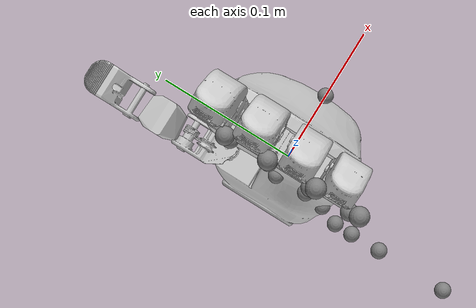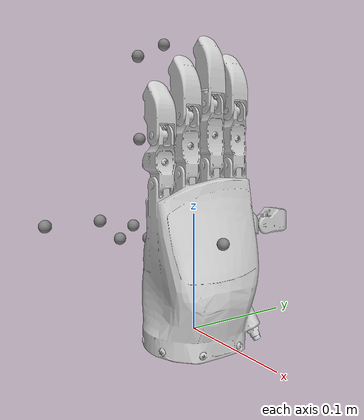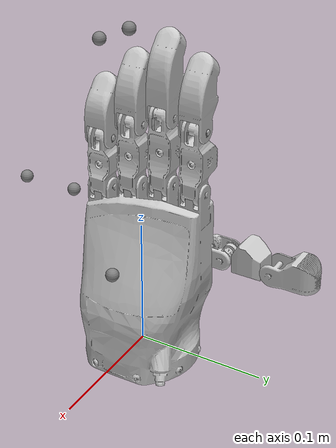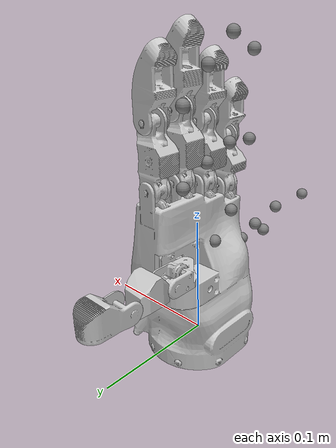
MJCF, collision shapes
<mujoco model="right_schunk_sih_hand-manipulator">
    <compiler angle="radian" meshdir="assets/right" autolimits="true" />

    <custom>
        <!-- define ROS topics to listen and publish to -->
        <text name="ros_state_topic" data="joint_states" />
        <text name="ros_target_topic" data="sih/command" />
        <!-- define joint names and joint position to command mapping -->
        <numeric name="ros_joint schunk_sih_right_thumb_opposition" data="1. 0.63662"/>
        <numeric name="ros_joint schunk_sih_right_thumb_flexion" data="0. 0.63662"/>
        <numeric name="ros_joint schunk_sih_right_index_finger" data="0. -0.63662"/>
        <numeric name="ros_joint schunk_sih_right_middle_finger" data="0. -0.63662"/>
        <numeric name="ros_joint schunk_sih_right_ring_finger" data="0. -0.63662"/>
    </custom>

    <default>
        <default class="right_hand">
            <mesh scale="0.001 0.001 0.001"/>
            <joint axis="1 0 0" damping="0.1" armature="0.01"/>
            <position kp="5" forcerange="-5 5"/>

            <!-- default joint and actuator attributes -->
            <default class="thumb_rotating">
                <joint range="-1.571 0" pos="0 0 0" axis="0 0 1"/>
                <position ctrlrange="-1.571 0"/>
            </default>
            <default class="thumb_bending">
                <joint range="0 1.571" pos="0 0 0" axis="0 1 0"/>
                <position ctrlrange="0 1.571"/>
            </default>
            <default class="finger_bending">
                <joint range="-1.571 0" pos="0 0 0" axis="1 0 0"/>
                <position ctrlrange="-1.571 0"/>
            </default>

            <!-- default visual and collision attributes -->
            <default class="plastic">
                <geom solimp="0.5 0.99 0.0001" solref="0.005 1"/>
                <default class="plastic_visual">
                    <geom type="mesh" material="black" contype="0" conaffinity="0" group="2"/>
                </default>
                <default class="brushed_metal_visual">
                    <geom type="mesh" material="brushed_metal" contype="0" conaffinity="0" group="2"/>
                </default>
                <default class="shiny_metal_visual">
                    <geom type="mesh" material="shiny_metal" contype="0" conaffinity="0" group="2"/>
                </default>
                <default class="gold_metal_visual">
                    <geom type="mesh" material="gold_metal" contype="0" conaffinity="0" group="2"/>
                </default>
                <default class="screws_visual">
                    <geom type="mesh" material="screws" contype="0" conaffinity="0" group="2"/>
                </default>
                <default class="plastic_collision">
                    <geom group="3" material="gray"/>
                </default>
            </default>
        </default>
    </default>

    <asset>
        <material name="black" specular="0.5" shininess="0.25" rgba="0.16355 0.16355 0.16355 1"/>
        <material name="gray" specular="0.0" shininess="0.25" rgba="0.80848 0.80848 0.80848 1"/>
        <material name="brushed_metal" specular="0" shininess="0.25" rgba="0.863 0.863 0.863 1"/>
        <material name="screws" specular="0" shininess="0.25" rgba="0.7 0.7 0.7 1"/>
        <material name="shiny_metal" specular="0" shininess="0.85" rgba="0.91 0.91 0.98 1"/>
        <material name="gold_metal" specular="0" shininess="0.25" rgba="0.917 0.882 0.761 1"/>

        <mesh class="right_hand" file="palm.stl"/>
        <mesh class="right_hand" file="if_proximal.stl"/>
        <mesh class="right_hand" file="if_distal.stl"/>
        <mesh class="right_hand" file="mf_proximal.stl"/>
        <mesh class="right_hand" file="mf_distal.stl"/>
        <mesh class="right_hand" file="rf_proximal.stl"/>
        <mesh class="right_hand" file="rf_distal.stl"/>
        <mesh class="right_hand" file="lf_proximal.stl"/>
        <mesh class="right_hand" file="lf_distal.stl"/>
        <mesh class="right_hand" file="th_proximal.stl"/>
        <mesh class="right_hand" file="th_inter.stl"/>
        <mesh class="right_hand" file="th_inter_cvx.stl"/>
        <mesh class="right_hand" file="th_distal.stl"/>

        <mesh class="right_hand" file="visual/palm_axes.stl"/>
        <mesh class="right_hand" file="visual/palm_back_base.stl"/>
        <mesh class="right_hand" file="visual/palm_back_plate.stl"/>
        <mesh class="right_hand" file="visual/palm_connector.stl"/>
        <mesh class="right_hand" file="visual/palm_flange_screws.stl"/>
        <mesh class="right_hand" file="visual/palm_flange.stl"/>
        <mesh class="right_hand" file="visual/palm_front_base.stl"/>
        <mesh class="right_hand" file="visual/palm_front_plate.stl"/>
        <mesh class="right_hand" file="visual/palm_pins.stl"/>
        <mesh class="right_hand" file="visual/palm_rolls.stl"/>
        <mesh class="right_hand" file="visual/palm_springs.stl"/>
        <mesh class="right_hand" file="visual/palm_thumb_base.stl"/>

        <mesh class="right_hand" file="visual/if_distal_top.stl"/>
        <mesh class="right_hand" file="visual/if_distal_bottom.stl"/>
        <mesh class="right_hand" file="visual/if_distal_nail.stl"/>
        <mesh class="right_hand" file="visual/if_distal_axis.stl"/>
        <mesh class="right_hand" file="visual/if_distal_spring.stl"/>
        <mesh class="right_hand" file="visual/if_proximal_back_plate.stl"/>
        <mesh class="right_hand" file="visual/if_proximal_base.stl"/>
        <mesh class="right_hand" file="visual/if_proximal_front_plate.stl"/>
        <mesh class="right_hand" file="visual/if_proximal_roll.stl"/>
        <mesh class="right_hand" file="visual/if_proximal_screws.stl"/>

        <mesh class="right_hand" file="visual/mf_distal_top.stl"/>
        <mesh class="right_hand" file="visual/mf_distal_bottom.stl"/>
        <mesh class="right_hand" file="visual/mf_distal_nail.stl"/>
        <mesh class="right_hand" file="visual/mf_distal_axis.stl"/>
        <mesh class="right_hand" file="visual/mf_distal_spring.stl"/>
        <mesh class="right_hand" file="visual/mf_proximal_back_plate.stl"/>
        <mesh class="right_hand" file="visual/mf_proximal_base.stl"/>
        <mesh class="right_hand" file="visual/mf_proximal_front_plate.stl"/>
        <mesh class="right_hand" file="visual/mf_proximal_roll.stl"/>
        <mesh class="right_hand" file="visual/mf_proximal_screws.stl"/>

        <mesh class="right_hand" file="visual/rf_distal_top.stl"/>
        <mesh class="right_hand" file="visual/rf_distal_bottom.stl"/>
        <mesh class="right_hand" file="visual/rf_distal_nail.stl"/>
        <mesh class="right_hand" file="visual/rf_distal_axis.stl"/>
        <mesh class="right_hand" file="visual/rf_distal_spring.stl"/>
        <mesh class="right_hand" file="visual/rf_proximal_back_plate.stl"/>
        <mesh class="right_hand" file="visual/rf_proximal_base.stl"/>
        <mesh class="right_hand" file="visual/rf_proximal_front_plate.stl"/>
        <mesh class="right_hand" file="visual/rf_proximal_roll.stl"/>
        <mesh class="right_hand" file="visual/rf_proximal_screws.stl"/>

        <mesh class="right_hand" file="visual/lf_distal_top.stl"/>
        <mesh class="right_hand" file="visual/lf_distal_bottom.stl"/>
        <mesh class="right_hand" file="visual/lf_distal_nail.stl"/>
        <mesh class="right_hand" file="visual/lf_proximal_axis.stl"/>
        <mesh class="right_hand" file="visual/lf_proximal_back_plate.stl"/>
        <mesh class="right_hand" file="visual/lf_proximal_base.stl"/>
        <mesh class="right_hand" file="visual/lf_proximal_front_plate.stl"/>
        <mesh class="right_hand" file="visual/lf_proximal_roll.stl"/>
        <mesh class="right_hand" file="visual/lf_proximal_screws.stl"/>

        <mesh class="right_hand" file="visual/th_distal_top.stl"/>
        <mesh class="right_hand" file="visual/th_distal_bottom.stl"/>
        <mesh class="right_hand" file="visual/th_distal_nail.stl"/>
        <mesh class="right_hand" file="visual/th_distal_axis.stl"/>

        <mesh class="right_hand" file="visual/th_inter_back_plate.stl"/>
        <mesh class="right_hand" file="visual/th_inter_base.stl"/>
        <mesh class="right_hand" file="visual/th_inter_front_plate.stl"/>
        <mesh class="right_hand" file="visual/th_inter_roll.stl"/>
        <mesh class="right_hand" file="visual/th_inter_screws.stl"/>
        <mesh class="right_hand" file="visual/th_inter_spring.stl"/>

        <mesh class="right_hand" file="visual/th_proximal_axis.stl"/>
        <mesh class="right_hand" file="visual/th_proximal_base.stl"/>
        <mesh class="right_hand" file="visual/th_proximal_guides.stl"/>
        <mesh class="right_hand" file="visual/th_proximal_roll.stl"/>
        <mesh class="right_hand" file="visual/th_proximal_screws.stl"/>
        <mesh class="right_hand" file="visual/th_proximal_spring.stl"/>

    </asset>

    <worldbody>
            <body name="palm" childclass="right_hand" pos="0 0 0" quat="0.707 0 0 0.707">
                <!-- attachment site for a vive tracker to visualize the tracker pose -->
                <site name="attachment_site" pos="0 -0.04 0.08" quat="0 0 0 1"/>
                <geom class="shiny_metal_visual" type="mesh" mesh="palm_axes" />
                <geom class="plastic_visual" type="mesh" mesh="palm_back_base" />
                <geom class="plastic_visual" type="mesh" mesh="palm_back_plate" />
                <geom class="gold_metal_visual" type="mesh" mesh="palm_connector" />
                <geom class="screws_visual" type="mesh" mesh="palm_flange_screws" />
                <geom class="brushed_metal_visual" type="mesh" mesh="palm_flange" />
                <geom class="brushed_metal_visual" type="mesh" mesh="palm_front_base" />
                <geom class="plastic_visual" type="mesh" mesh="palm_front_plate" />
                <geom class="shiny_metal_visual" type="mesh" mesh="palm_pins" />
                <geom class="screws_visual" type="mesh" mesh="palm_rolls" />
                <geom class="screws_visual" type="mesh" mesh="palm_springs" />
                <geom class="brushed_metal_visual" type="mesh" mesh="palm_thumb_base" />
                <geom class="plastic_collision" type="mesh" mesh="palm" />

                <!-- site that can be used to query the palm position-->
                <site name="keypoint-hand_bodies-palm" pos="0 0.018 0.09"/>
                <site name="keypoint-palm-palm" pos="-0.02 0.018 0.11"/>

                <!-- thumb -->
                <body name="th_proximal" pos="-0.034 0.019 0.08">
                    <site name="teleop-rh_th_angle0" user="-1.571 -1 0 0 0"/>
                    <site name="keypoint-hand_bodies-th_proximal" pos="-0.0115 0.005 0.011"/>
                    <!--inertial pos="0 0 0" quat="0.820473 0.339851 -0.17592 0.424708" mass="0.1" diaginertia="0.0001 0.0001 0.0001" /-->
                    <joint name="palm_to_th_proximal" class="thumb_rotating"/>
                    <geom class="shiny_metal_visual" pos="0.034 -0.019 -0.08" type="mesh" mesh="th_proximal_axis" />
                    <geom class="brushed_metal_visual" pos="0.034 -0.019 -0.08" type="mesh" mesh="th_proximal_base" />
                    <geom class="plastic_visual" pos="0.034 -0.019 -0.08" type="mesh" mesh="th_proximal_guides" />
                    <geom class="screws_visual" pos="0.034 -0.019 -0.08" type="mesh" mesh="th_proximal_roll" />
                    <geom class="screws_visual" pos="0.034 -0.019 -0.08" type="mesh" mesh="th_proximal_screws" />
                    <geom class="screws_visual" pos="0.034 -0.019 -0.08" type="mesh" mesh="th_proximal_spring" />
                    <geom class="plastic_collision" pos="0.034 -0.019 -0.08" type="mesh" mesh="th_proximal" />
                    <body name="th_inter" pos="-0.024 0.005 0.001">
                        <site name="teleop-rh_th_flexion" user="0 1.571 0 0 0"/>
                        <site name="keypoint-hand_bodies-th_inter" pos="-0.0175 0 0.016"/>
                        <!--inertial pos="0 0 0" quat="0.820473 0.339851 -0.17592 0.424708" mass="0.1" diaginertia="0.0001 0.0001 0.0001" /-->
                        <joint name="th_proximal_to_th_inter" class="thumb_bending"/>
                        <geom class="plastic_visual" pos="0.058 -0.024 -0.081" type="mesh" mesh="th_inter_back_plate" />
                        <geom class="brushed_metal_visual" pos="0.058 -0.024 -0.081" type="mesh" mesh="th_inter_base" />
                        <geom class="plastic_visual" pos="0.058 -0.024 -0.081" type="mesh" mesh="th_inter_front_plate" />
                        <geom class="screws_visual" pos="0.058 -0.024 -0.081" type="mesh" mesh="th_inter_roll" />
                        <geom class="screws_visual" pos="0.058 -0.024 -0.081" type="mesh" mesh="th_inter_screws" />
                        <geom class="screws_visual" pos="0.058 -0.024 -0.081" type="mesh" mesh="th_inter_spring" />
                        <geom class="plastic_collision" pos="0.058 -0.024 -0.081" type="mesh" mesh="th_inter_cvx" />
                        <body name="th_distal" pos="-0.0391 0 0">
                            <site name="keypoint-hand_bodies-th_distal" pos="-0.023 0 0.015"/>
                            <site name="keypoint-fingertips-th" pos="-0.023 0 0.015"/>
                            <site name="keypoint-fingertips-th2" pos="-0.023 0 0.015"/>
                            <site name="keypoint-tripod-th" pos="-0.023 0 0.015"/>
                            <!--inertial pos="0 0 0" quat="0.820473 0.339851 -0.17592 0.424708" mass="0.1" diaginertia="0.0001 0.0001 0.0001" /-->
                            <joint name="th_inter_to_th_distal" class="thumb_bending"/>
                            <geom class="plastic_visual" pos="0.0971 -0.024 -0.081" type="mesh" mesh="th_distal_top" />
                            <geom class="brushed_metal_visual" pos="0.0971 -0.024 -0.081" type="mesh" mesh="th_distal_bottom" />
                            <geom class="plastic_visual" pos="0.0971 -0.024 -0.081" type="mesh" mesh="th_distal_nail" />
                            <geom class="shiny_metal_visual" pos="0.0971 -0.024 -0.081" type="mesh" mesh="th_distal_axis" />
                            <geom class="plastic_collision" pos="0.0971 -0.024 -0.081" type="mesh" mesh="th_distal" />
                        </body>
                    </body>
                </body>

                <!-- index finger -->
                <body name="if_proximal" pos="0.0435 0 0.141">
                    <site name="keypoint-hand_bodies-if_proximal" pos="-0.087 0.016 0.022"/>
                    <site name="teleop-rh_if_flexion" user="0 -1.571 0 0 0"/>
                    <!--inertial pos="0 0 0" quat="0.820473 0.339851 -0.17592 0.424708" mass="0.1" diaginertia="0.0001 0.0001 0.0001" /-->
                    <joint name="palm_to_if_proximal" class="finger_bending"/>
                    <geom class="plastic_visual" pos="-0.0435 0 -0.141" type="mesh" mesh="if_proximal_back_plate" />
                    <geom class="brushed_metal_visual" pos="-0.0435 0 -0.141" type="mesh" mesh="if_proximal_base" />
                    <geom class="plastic_visual" pos="-0.0435 0 -0.141" type="mesh" mesh="if_proximal_front_plate" />
                    <geom class="screws_visual" pos="-0.0435 0 -0.141" type="mesh" mesh="if_proximal_roll" />
                    <geom class="screws_visual" pos="-0.0435 0 -0.141" type="mesh" mesh="if_proximal_screws" />
                    <geom class="plastic_collision" pos="-0.0435 0 -0.141" type="mesh" mesh="if_proximal" />
                    <body name="if_distal" pos="0 0 0.048">
                        <site name="keypoint-hand_bodies-if_distal" pos="-0.087 0.0175 0.041"/>
                        <site name="keypoint-fingertips-if" pos="-0.087 0.0175 0.041"/>
                        <site name="keypoint-tripod-if" pos="-0.087 0.0175 0.041"/>
                        <!--inertial pos="0 0 0" quat="0.820473 0.339851 -0.17592 0.424708" mass="0.1" diaginertia="0.0001 0.0001 0.0001" /-->
                        <joint name="if_proximal_to_if_distal" class="finger_bending"/>
                        <geom class="plastic_visual" pos="-0.0435 0 -0.189" type="mesh" mesh="if_distal_top" />
                        <geom class="brushed_metal_visual" pos="-0.0435 0 -0.189" type="mesh" mesh="if_distal_bottom" />
                        <geom class="plastic_visual" pos="-0.0435 0 -0.189" type="mesh" mesh="if_distal_nail" />
                        <geom class="shiny_metal_visual" pos="-0.0435 0 -0.189" type="mesh" mesh="if_distal_axis" />
                        <geom class="screws_visual" pos="-0.0435 0 -0.189" type="mesh" mesh="if_distal_spring" />
                        <geom class="plastic_collision" pos="-0.0435 0 -0.189" type="mesh" mesh="if_distal" />
                    </body>
                </body>

                <!-- middle finger -->
                <body name="mf_proximal" pos="0.0187 0 0.141">
                    <site name="keypoint-hand_bodies-mf_proximal" pos="-0.0375 0.016 0.024"/>
                    <site name="teleop-rh_mf_flexion" user="0 -1.571 0 0 0"/>
                    <!--inertial pos="0 0 0" quat="0.820473 0.339851 -0.17592 0.424708" mass="0.1" diaginertia="0.0001 0.0001 0.0001" /-->
                    <joint name="palm_to_mf_proximal" class="finger_bending"/>
                    <geom class="plastic_visual" pos="-0.0187 0 -0.141" type="mesh" mesh="mf_proximal_back_plate" />
                    <geom class="brushed_metal_visual" pos="-0.0187 0 -0.141" type="mesh" mesh="mf_proximal_base" />
                    <geom class="plastic_visual" pos="-0.0187 0 -0.141" type="mesh" mesh="mf_proximal_front_plate" />
                    <geom class="screws_visual" pos="-0.0187 0 -0.141" type="mesh" mesh="mf_proximal_roll" />
                    <geom class="screws_visual" pos="-0.0187 0 -0.141" type="mesh" mesh="mf_proximal_screws" />
                    <geom class="plastic_collision" pos="-0.0187 0 -0.141" type="mesh" mesh="mf_proximal"/>
                    <body name="mf_distal" pos="0 0 0.0525">
                        <site name="keypoint-hand_bodies-mf_distal" pos="-0.0375 0.0175 0.049"/>
                        <site name="keypoint-fingertips-mf" pos="-0.0375 0.0175 0.049"/>
                        <site name="keypoint-tripod-mf" pos="-0.0375 0.0175 0.049"/>
                        <!--inertial pos="0 0 0" quat="0.820473 0.339851 -0.17592 0.424708" mass="0.1" diaginertia="0.0001 0.0001 0.0001"/-->
                        <joint name="mf_proximal_to_mf_distal" class="finger_bending"/>
                        <geom class="plastic_visual" pos="-0.0187 0 -0.1935" type="mesh" mesh="mf_distal_top" />
                        <geom class="brushed_metal_visual" pos="-0.0187 0 -0.1935" type="mesh" mesh="mf_distal_bottom" />
                        <geom class="plastic_visual" pos="-0.0187 0 -0.1935" type="mesh" mesh="mf_distal_nail" />
                        <geom class="shiny_metal_visual" pos="-0.0187 0 -0.1935" type="mesh" mesh="mf_distal_axis" />
                        <geom class="screws_visual" pos="-0.0187 0 -0.1935" type="mesh" mesh="mf_distal_spring" />
                        <geom class="plastic_collision" pos="-0.0187 0 -0.1935" type="mesh" mesh="mf_distal"/>
                    </body>
                </body>

                <!-- ring finger -->
                <body name="rf_proximal" pos="-0.0069 0 0.134">
                    <site name="keypoint-hand_bodies-rf_proximal" pos="0.014 0.016 0.0215"/>
                    <site name="teleop-rh_rf_flexion" user="0 -1.571 0 0 0"/>
                    <!--inertial pos="0 0 0" quat="0.820473 0.339851 -0.17592 0.424708" mass="0.1" diaginertia="0.0001 0.0001 0.0001" /-->
                    <joint name="palm_to_rf_proximal" class="finger_bending"/>
                    <geom class="plastic_visual" pos="0.0069 0 -0.134" type="mesh" mesh="rf_proximal_back_plate" />
                    <geom class="brushed_metal_visual" pos="0.0069 0 -0.134" type="mesh" mesh="rf_proximal_base" />
                    <geom class="plastic_visual" pos="0.0069 0 -0.134" type="mesh" mesh="rf_proximal_front_plate" />
                    <geom class="screws_visual" pos="0.0069 0 -0.134" type="mesh" mesh="rf_proximal_roll" />
                    <geom class="screws_visual" pos="0.0069 0 -0.134" type="mesh" mesh="rf_proximal_screws" />
                    <geom class="plastic_collision" pos="0.0069 0 -0.134" type="mesh" mesh="rf_proximal" />
                    <body name="rf_distal" pos="0 0 0.048">
                        <site name="keypoint-hand_bodies-rf_distal" pos="0.014 0.0175 0.041"/>
                        <site name="keypoint-fingertips-rf" pos="0.014 0.0175 0.041"/>
                        <!--inertial pos="0 0 0" quat="0.820473 0.339851 -0.17592 0.424708" mass="0.1" diaginertia="0.0001 0.0001 0.0001" /-->
                        <joint name="rf_proximal_to_rf_distal" class="finger_bending"/>
                        <geom class="plastic_visual" pos="0.0069 0 -0.182" type="mesh" mesh="rf_distal_top" />
                        <geom class="brushed_metal_visual" pos="0.0069 0 -0.182" type="mesh" mesh="rf_distal_bottom" />
                        <geom class="plastic_visual" pos="0.0069 0 -0.182" type="mesh" mesh="rf_distal_nail" />
                        <geom class="shiny_metal_visual" pos="0.0069 0 -0.182" type="mesh" mesh="rf_distal_axis" />
                        <geom class="screws_visual" pos="0.0069 0 -0.182" type="mesh" mesh="rf_distal_spring" />
                        <geom class="plastic_collision" pos="0.0069 0 -0.182" type="mesh" mesh="rf_distal" />
                    </body>
                </body>

                <!-- little finger -->
                <body name="lf_proximal" pos="-0.032 0 0.1254">
                    <site name="keypoint-hand_bodies-lf_proximal" pos="0.064 0.016 0.01685"/>
                    <!--inertial pos="0 0 0" quat="0.820473 0.339851 -0.17592 0.424708" mass="0.1" diaginertia="0.0001 0.0001 0.0001" /-->
                    <joint name="palm_to_lf_proximal" class="finger_bending"/>
                    <geom class="shiny_metal_visual" pos="0.032 0 -0.1254" type="mesh" mesh="lf_proximal_axis" />
                    <geom class="plastic_visual" pos="0.032 0 -0.1254" type="mesh" mesh="lf_proximal_back_plate" />
                    <geom class="brushed_metal_visual" pos="0.032 0 -0.1254" type="mesh" mesh="lf_proximal_base" />
                    <geom class="plastic_visual" pos="0.032 0 -0.1254" type="mesh" mesh="lf_proximal_front_plate" />
                    <geom class="screws_visual" pos="0.032 0 -0.1254" type="mesh" mesh="lf_proximal_roll" />
                    <geom class="screws_visual" pos="0.032 0 -0.1254" type="mesh" mesh="lf_proximal_screws" />
                    <geom class="plastic_collision" pos="0.032 0 -0.1254" type="mesh" mesh="lf_proximal" />
                    <body name="lf_distal" pos="0 0 0.0401">
                        <site name="keypoint-hand_bodies-lf_distal" pos="0.064 0.0175 0.034"/>
                        <site name="keypoint-fingertips-lf" pos="0.064 0.0175 0.034"/>
                        <!--inertial pos="0 0 0" quat="0.820473 0.339851 -0.17592 0.424708" mass="0.1" diaginertia="0.0001 0.0001 0.0001" /-->
                        <joint name="lf_proximal_to_lf_distal" class="finger_bending"/>
                        <geom class="plastic_visual" pos="0.032 0 -0.1655" type="mesh" mesh="lf_distal_top" />
                        <geom class="brushed_metal_visual" pos="0.032 0 -0.1655" type="mesh" mesh="lf_distal_bottom" />
                        <geom class="plastic_visual" pos="0.032 0 -0.1655" type="mesh" mesh="lf_distal_nail" />
                        <geom class="plastic_collision" pos="0.032 0 -0.1655" type="mesh" mesh="lf_distal" />
                    </body>
                </body>
            </body>
    </worldbody>

    <!-- exclude some problematic self-collisions -->
    <contact>
        <exclude body1="if_proximal" body2="if_distal"/>
        <exclude body1="mf_proximal" body2="mf_distal"/>
        <exclude body1="rf_proximal" body2="rf_distal"/>
        <exclude body1="lf_proximal" body2="lf_distal"/>
        <exclude body1="th_proximal" body2="th_distal"/>

        <exclude body1="palm" body2="if_proximal"/>
        <exclude body1="palm" body2="mf_proximal"/>
        <exclude body1="palm" body2="rf_proximal"/>
        <exclude body1="palm" body2="lf_proximal"/>
        <exclude body1="palm" body2="th_proximal"/>
    </contact>

    <actuator>
        <position name="a_th_rot" joint="palm_to_th_proximal" class="thumb_rotating"/>
        <position name="a_th_bend" joint="th_proximal_to_th_inter" class="thumb_bending"/>
        <position name="a_if_bend" joint="palm_to_if_proximal" class="finger_bending"/>
        <position name="a_mf_bend" joint="palm_to_mf_proximal" class="finger_bending"/>
        <position name="a_rf_lf_bend" joint="palm_to_rf_proximal" class="finger_bending"/>
    </actuator>

    <!-- define equalities to position joints that cannot be actuated directly -->
    <equality>
        <joint name="th_command_mapping" joint1="th_proximal_to_th_inter" polycoef="0.07598 -0.12908 5.02439 -4.98155 1.40271"/>
        <joint name="if_command_mapping" joint1="palm_to_if_proximal" polycoef="-0.07021 2.70951 2.18205 0.79028 0.10012"/>
        <joint name="mf_command_mapping" joint1="palm_to_mf_proximal" polycoef="-0.07021 2.70951 2.18205 0.79028 0.10012"/>
        <joint name="rf_command_mapping" joint1="palm_to_rf_proximal" polycoef="-0.07021 2.70951 2.18205 0.79028 0.10012"/>

        <joint name="th_bend_equality" joint1="th_proximal_to_th_inter" joint2="th_inter_to_th_distal" polycoef="0.02341 0.05085 -0.51205 1.19094 -0.37817"/>
        <joint name="if_bend_equality" joint1="palm_to_if_proximal" joint2="if_proximal_to_if_distal" polycoef="-0.04943 -0.66783 -2.98017 -2.17345 -0.56311"/>
        <joint name="mf_bend_equality" joint1="palm_to_mf_proximal" joint2="mf_proximal_to_mf_distal" polycoef="-0.04943 -0.66783 -2.98017 -2.17345 -0.56311"/>
        <joint name="rf_bend_equality" joint1="palm_to_rf_proximal" joint2="rf_proximal_to_rf_distal" polycoef="-0.04943 -0.66783 -2.98017 -2.17345 -0.56311"/>
        <joint name="rf_lf_equality1" joint1="palm_to_rf_proximal" joint2="palm_to_lf_proximal" polycoef="-0.07021 2.70951 2.18205 0.79028 0.10012"/>
        <joint name="rf_lf_equality2" joint1="palm_to_rf_proximal" joint2="lf_proximal_to_lf_distal" polycoef="-0.04943 -0.66783 -2.98017 -2.17345 -0.56311"/>
    </equality>

    <keyframe>
        <key name="home" qpos="-1.571 0 0 0 0 0 0 0 0 0 0" ctrl="-1.571 0 0 0 0"/>
        <key name="default_initial" qpos="-1.571 0 0 0 0 0 0 0 0 0 0" ctrl="-1.571 0 0 0 0"/>
        <key name="real_robot_initial" qpos="-1.571 0 0 0 0 0 0 0 0 0 0" ctrl="-1.571 0 0 0 0"/>
    </keyframe>
</mujoco>
